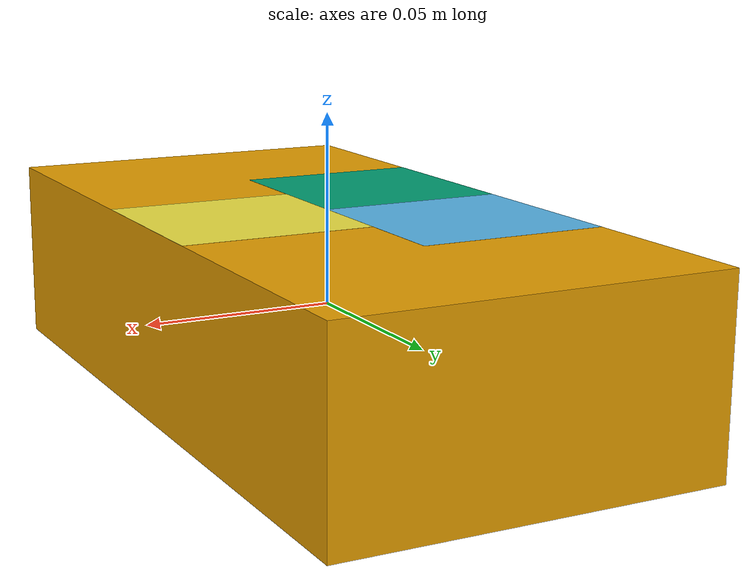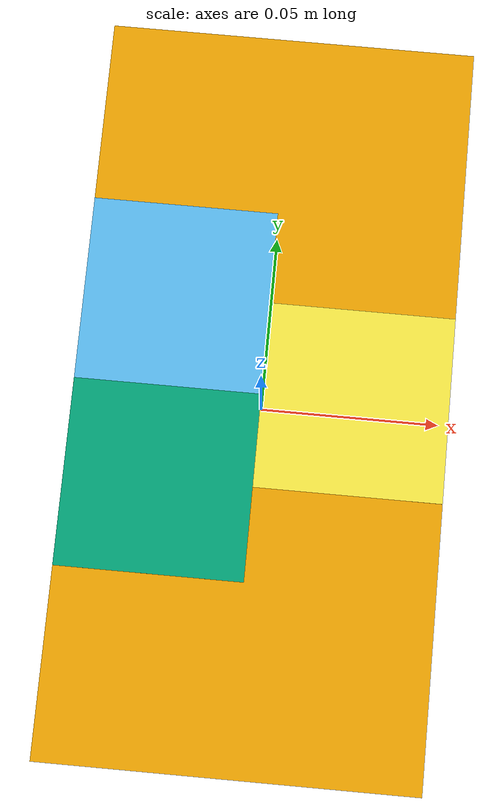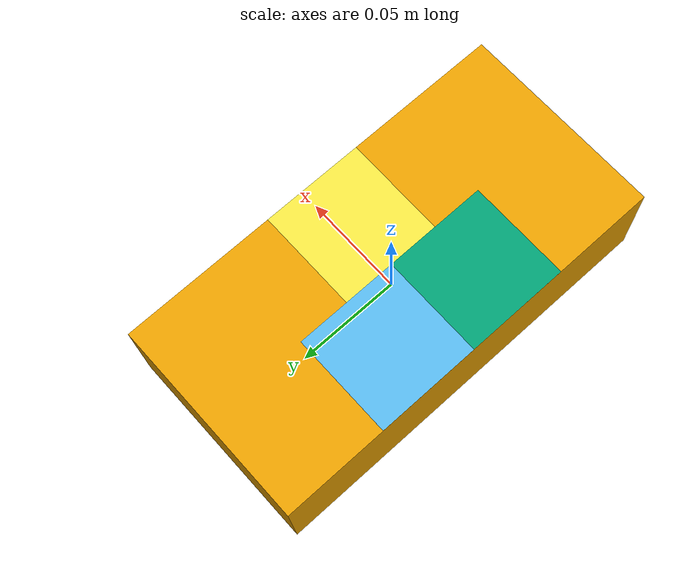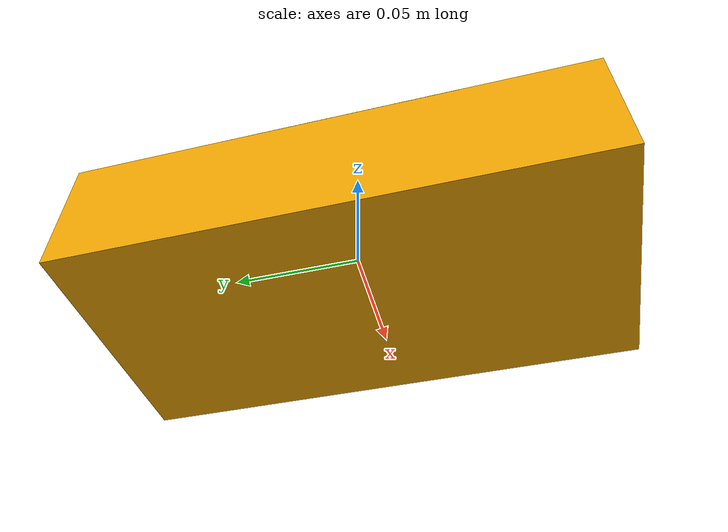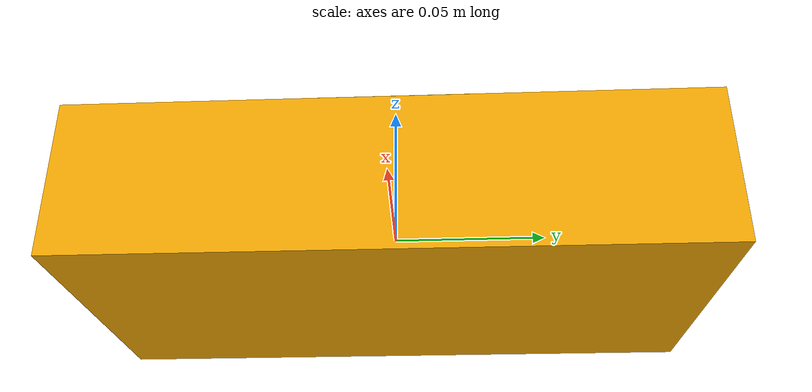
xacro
<?xml version="1.0"?>

<robot name="box" xmlns:xacro="http://ros.org/wiki/xacro">

  <xacro:property name="tag" value="tag.dae" />

  <link name="box">
    <visual>
      <origin rpy="0 0 0" xyz="0 0 0"/>
      <geometry>
        <box size="0.1 0.2 0.05"/>
      </geometry>
    </visual>
    <collision>
      <origin rpy="0 0 0" xyz="0 0 0"/>
      <geometry>
        <box size="0.1 0.2 0.05"/>
      </geometry>
    </collision>
    <inertial>
      <origin rpy="0 0 0" xyz="-0.05 0 -0.1118034"/>
      <mass value="4.91945127"/>
      <inertia ixx="5.60655457e-2" ixy="0" ixz="8.97336882e-5" iyx="0" iyy="8.24486898e-2" iyz="0" izx="8.97336882e-5" izy="0" izz="8.24038911e-2"/>
    </inertial>
  </link>

  <!-- Primeira caixa -->

  <link name="artag1">
    <visual>
      <origin rpy="0 0 0" xyz="0 0 0"/>
      <geometry>
        <mesh filename="package://manipulator-control/meshes/${tag}" scale="0.5 0.5 0.5"/>
      </geometry>
    </visual>
    <collision>
      <origin rpy="0 0 0" xyz="0 0 0"/>
      <geometry>
        <mesh filename="package://manipulator-control/meshes/${tag}" scale="0.5 0.5 0.5"/>
      </geometry>
    </collision>
    <inertial>
      <origin rpy="0 0 0" xyz="0 0 0"/>
      <mass value="0.01052000"/>
      <inertia ixx="8.76754333e-6" ixy="0" ixz="0" iyx="0" iyy="8.76754333e-6" iyz="0" izx="0" izy="0" izz="1.75333333e-5"/>
    </inertial>
  </link>

  <joint name="tag_joint1" type="fixed">
    <parent link="box"/>
    <child link="artag1"/>
    <origin rpy="0 0 -1.571" xyz="-0.025 0.025 0.025"/>
  </joint>

  <!-- Segunda caixa -->

  <link name="artag2">
    <visual>
      <origin rpy="0 0 0" xyz="0 0 0"/>
      <geometry>
        <mesh filename="package://manipulator-control/meshes/${tag}" scale="0.5 0.5 0.5"/>
      </geometry>
    </visual>
    <collision>
      <origin rpy="0 0 0" xyz="0 0 0"/>
      <geometry>
        <mesh filename="package://manipulator-control/meshes/${tag}" scale="0.5 0.5 0.5"/>
      </geometry>
    </collision>
    <inertial>
      <origin rpy="0 0 0" xyz="0 0 0"/>
      <mass value="0.01052000"/>
      <inertia ixx="8.76754333e-6" ixy="0" ixz="0" iyx="0" iyy="8.76754333e-6" iyz="0" izx="0" izy="0" izz="1.75333333e-5"/>
    </inertial>
  </link>

  <joint name="tag_joint2" type="fixed">
    <parent link="box"/>
    <child link="artag2"/>
    <origin rpy="0 0 -1.571" xyz="-0.025 -0.025 0.025"/>
  </joint>

  <!-- Terceira caixa -->

  <link name="artag3">
    <visual>
      <origin rpy="0 0 0" xyz="0 0 0"/>
      <geometry>
        <mesh filename="package://manipulator-control/meshes/${tag}" scale="0.5 0.5 0.5"/>
      </geometry>
    </visual>
    <collision>
      <origin rpy="0 0 0" xyz="0 0 0"/>
      <geometry>
        <mesh filename="package://manipulator-control/meshes/${tag}" scale="0.5 0.5 0.5"/>
      </geometry>
    </collision>
    <inertial>
      <origin rpy="0 0 0" xyz="0 0 0"/>
      <mass value="0.01052000"/>
      <inertia ixx="8.76754333e-6" ixy="0" ixz="0" iyx="0" iyy="8.76754333e-6" iyz="0" izx="0" izy="0" izz="1.75333333e-5"/>
    </inertial>
  </link>

  <joint name="tag_joint3" type="fixed">
    <parent link="box"/>
    <child link="artag3"/>
    <origin rpy="0 0 -1.571" xyz="0.025 0 0.025"/>
  </joint>

</robot>
